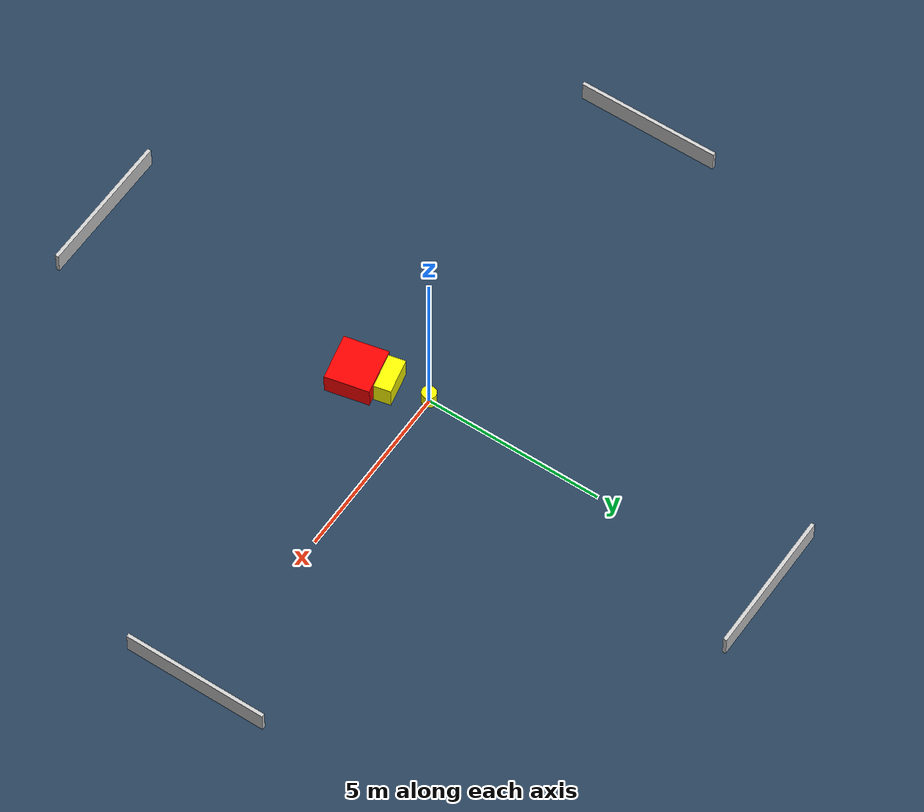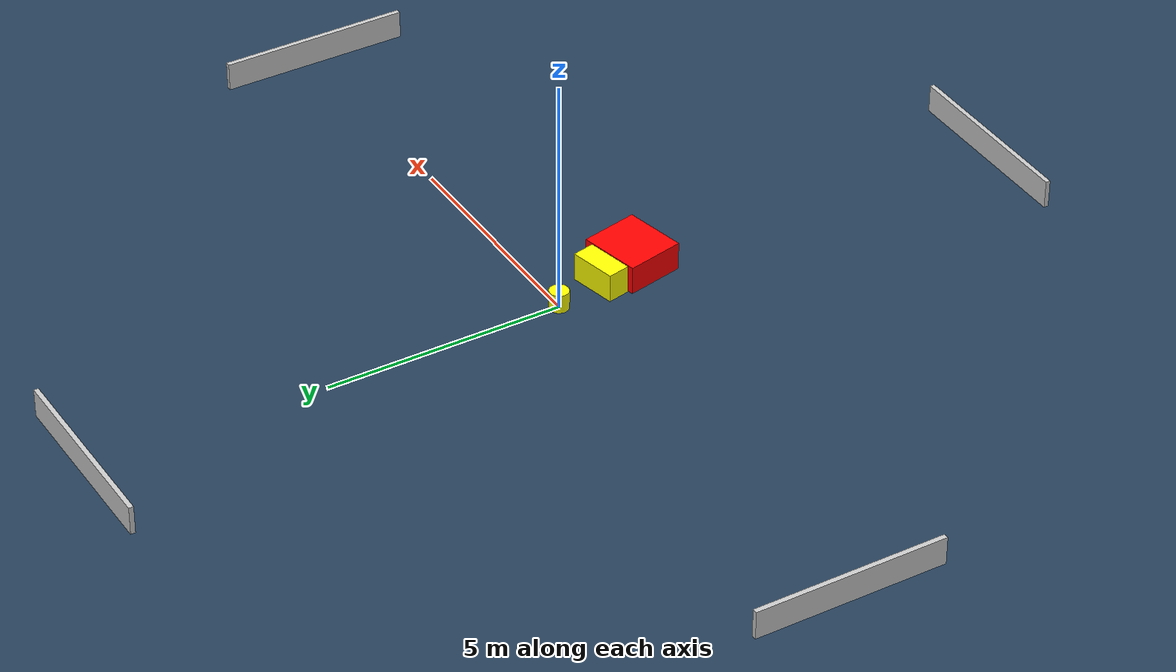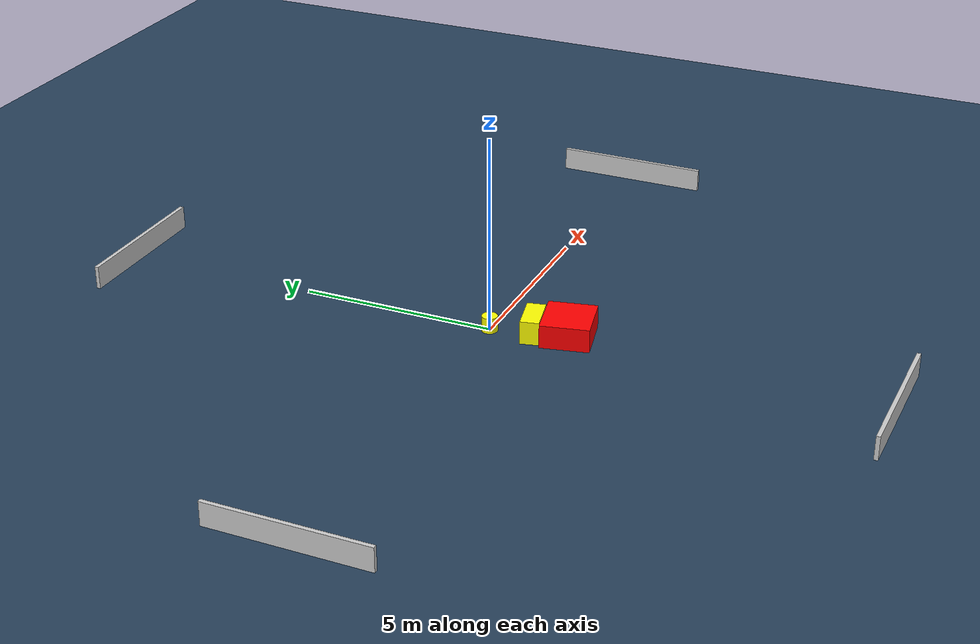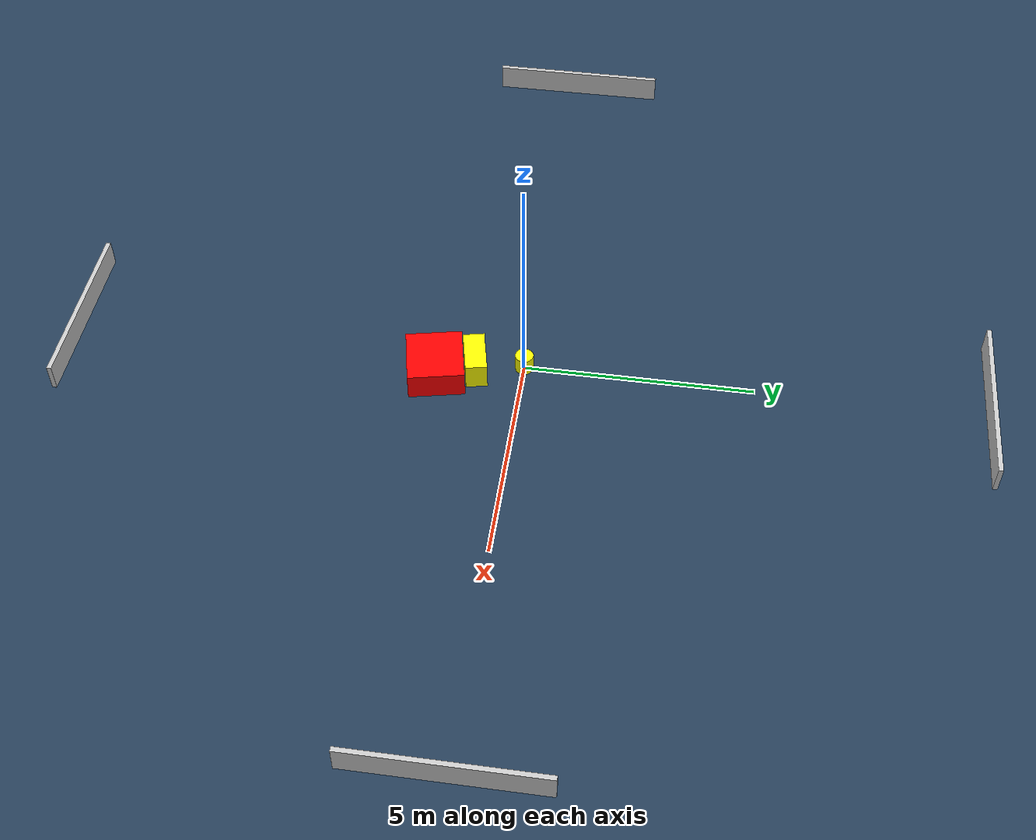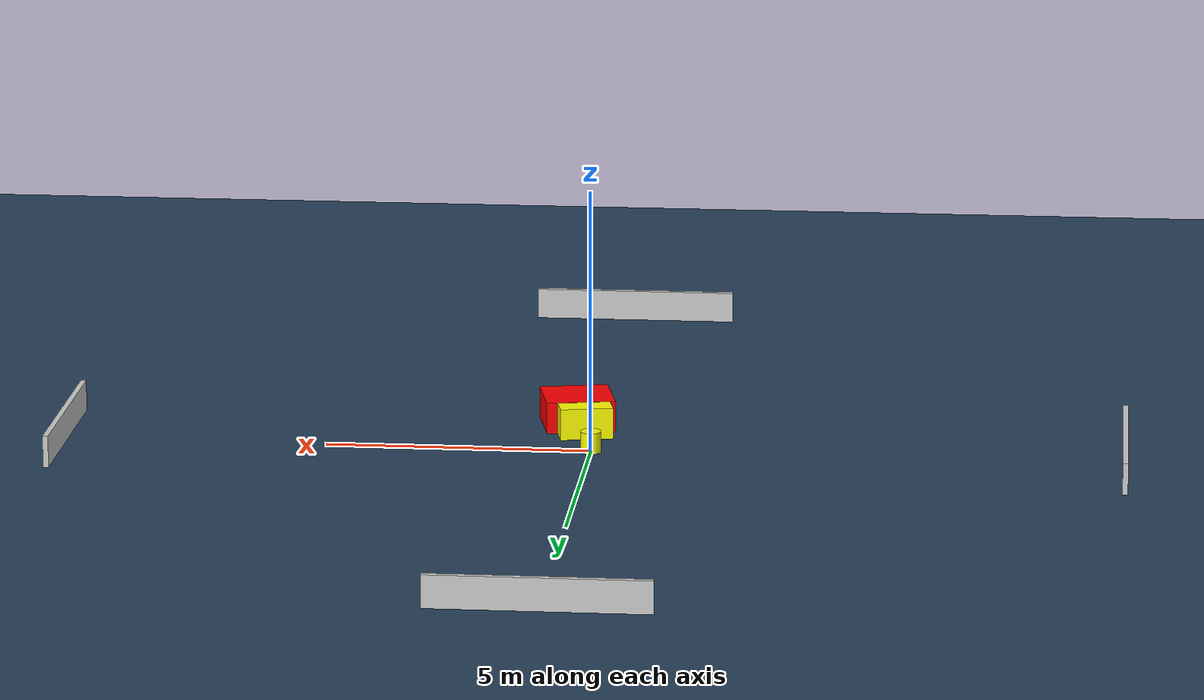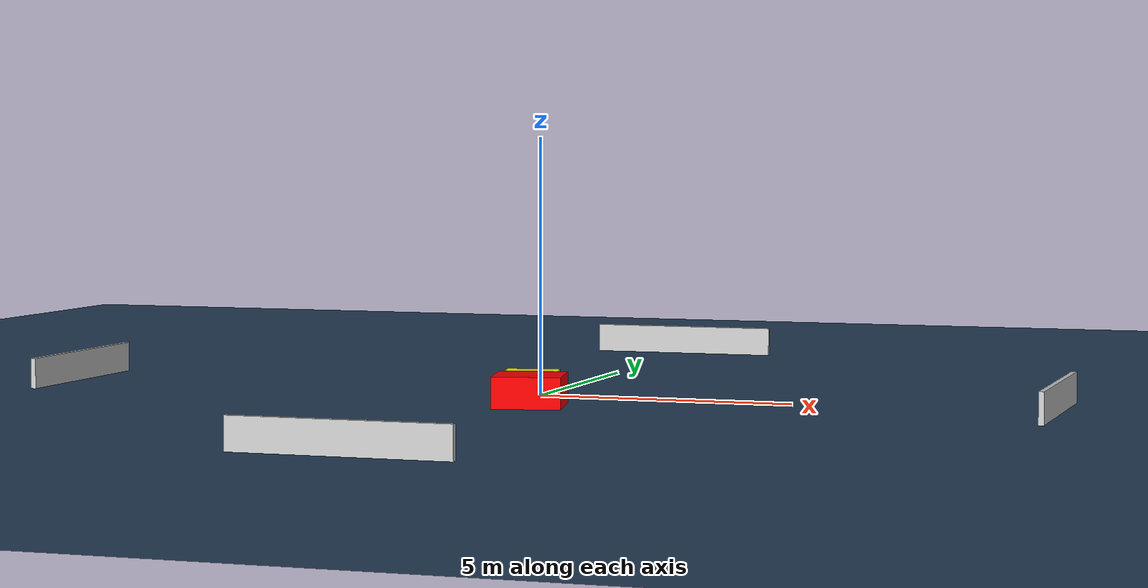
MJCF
<?xml version="1.0" ?>
<mujoco model="generated_environment">
  <option timestep="0.01" integrator="RK4" cone="elliptic"/>
  <default>
    <geom density="1"/>
  </default>
  <asset>
    <texture builtin="gradient" height="3072" name="skybox" rgb1="0.3 0.5 0.7" rgb2="0 0 0" type="skybox" width="512"/>
    <texture builtin="checker" height="300" name="groundplane" rgb1="0.2 0.3 0.4" rgb2="0.1 0.2 0.3" type="2d" width="300"/>
    <material name="groundplane" reflectance="0.2" texrepeat="5 5" texture="groundplane"/>
  </asset>
  <worldbody>
    <light dir="0 0 -1" directional="true" pos="0 0 1.5"/>
    <geom condim="3" friction="0.5 0.005 0.001" material="groundplane" name="floor" pos="0 0 0" size="0 0 0.05" type="plane"/>
    <body name="walls">
      <geom name="wall_1" condim="4" pos="-10.0 0.0 0.3" rgba="0.800000011920929 0.800000011920929 0.800000011920929 1.0" size="0.05 2.0 0.3" type="box"/>
      <geom name="wall_2" condim="4" pos="10.0 0.0 0.3" rgba="0.800000011920929 0.800000011920929 0.800000011920929 1.0" size="0.05 2.0 0.3" type="box"/>
      <geom name="wall_3" condim="4" pos="0.0 -10.0 0.3" rgba="0.800000011920929 0.800000011920929 0.800000011920929 1.0" size="2.0 0.05 0.3" type="box"/>
      <geom name="wall_4" condim="4" pos="0.0 10.0 0.3" rgba="0.800000011920929 0.800000011920929 0.800000011920929 1.0" size="2.0 0.05 0.3" type="box"/>
    </body>
    <body name="robot">
      <joint name="joint_x" type="slide" pos="0 0 0" axis="1 0 0"/>
      <joint name="joint_y" type="slide" pos="0 0 0" axis="0 1 0"/>
      <geom name="robot" type="cylinder" pos="0.0 0.0 0.2" size="0.2 0.2 0.0" mass="5.0" friction="1.0 0.005 0.0001" condim="4" rgba="1.0 1.0 0.0 1.0"/>
    </body>
    <body name="obstacle_1_movable">
      <geom name="obstacle_1_movable" condim="4" pos="0.1988875373527584 -1.0529816262006062 0.3" euler="0 0 12.386130116736794" friction="0.0 0.005 0.001" rgba="1.0 1.0 0.0 1.0" size="0.5006164669793611 0.23548028808455274 0.3" type="box" mass="0.1"/>
      <joint type="free"/>
    </body>
    <body name="obstacle_2_static">
      <geom name="obstacle_2_static" condim="4" pos="0.42998989031623064 -1.8926453309036526 0.3" euler="0 0 12.169002949104865" friction="0.0 0.005 0.001" rgba="1.0 0.0 0.0 1.0" size="0.6553057470448059 0.6136082286109544 0.3" type="box"/>
    </body>
  </worldbody>
  <actuator>
    <motor name="actuator_x" joint="joint_x" gear="1" ctrlrange="-1 1"/>
    <motor name="actuator_y" joint="joint_y" gear="1" ctrlrange="-1 1"/>
  </actuator>
</mujoco>
